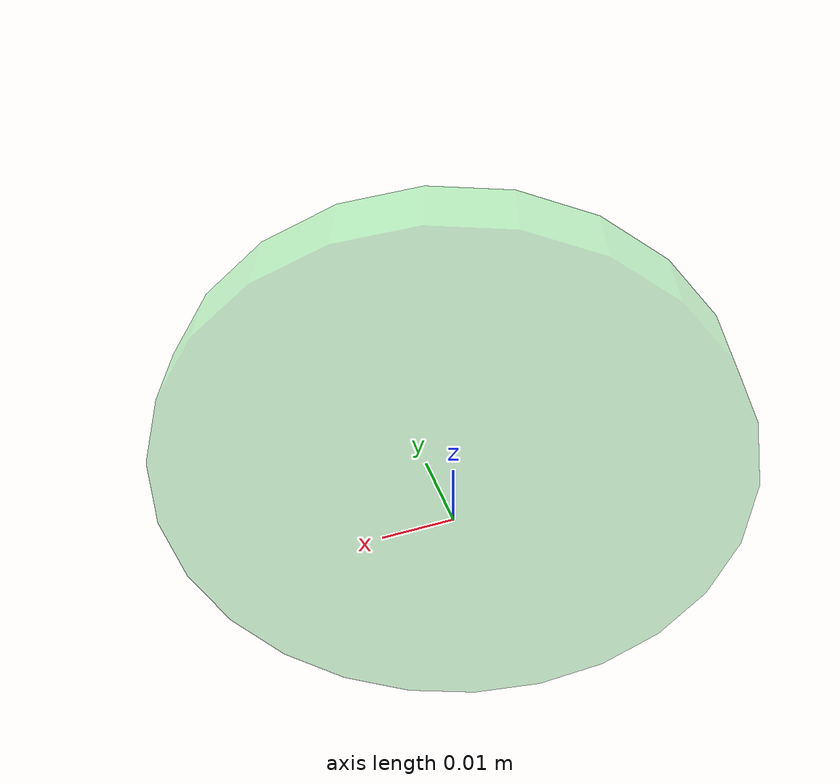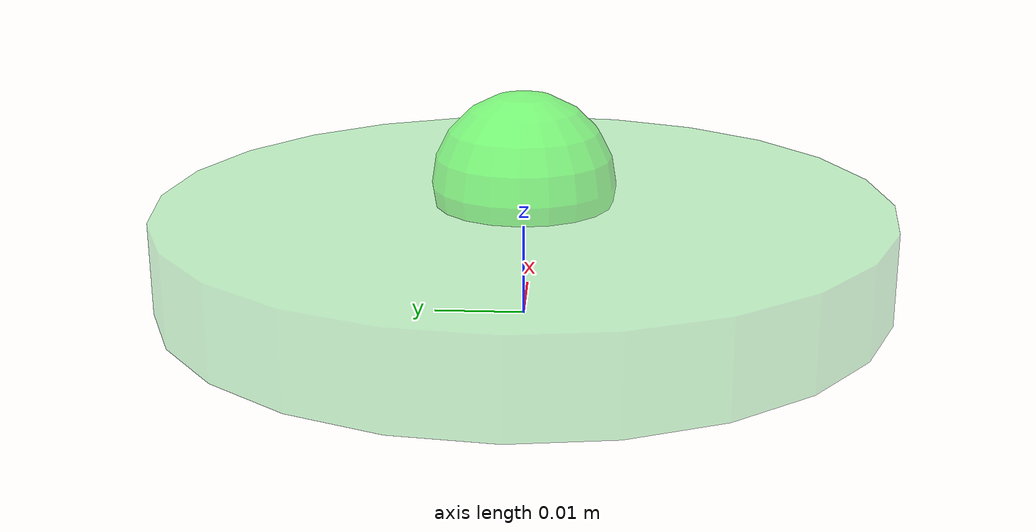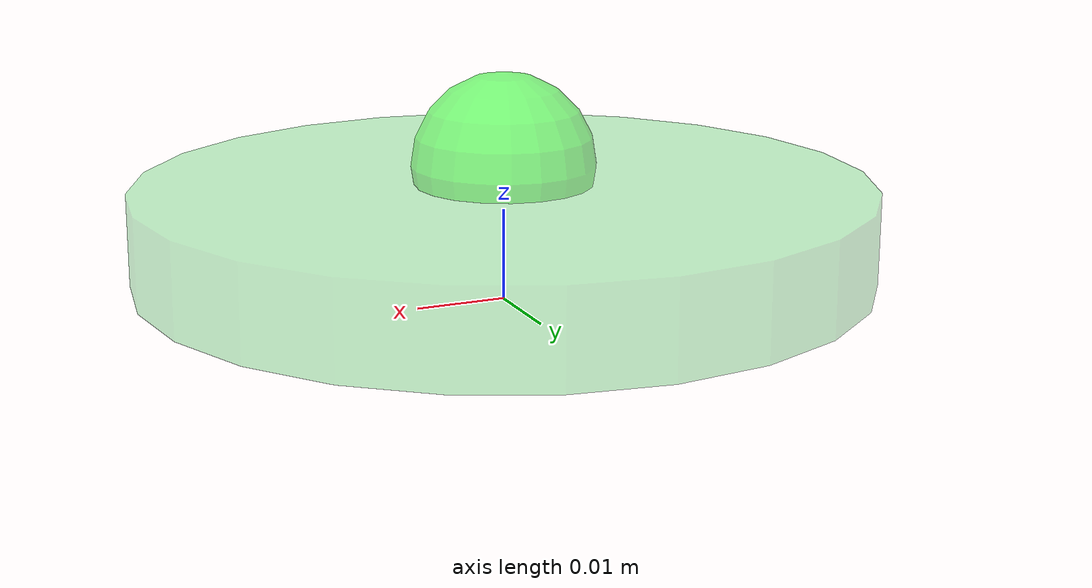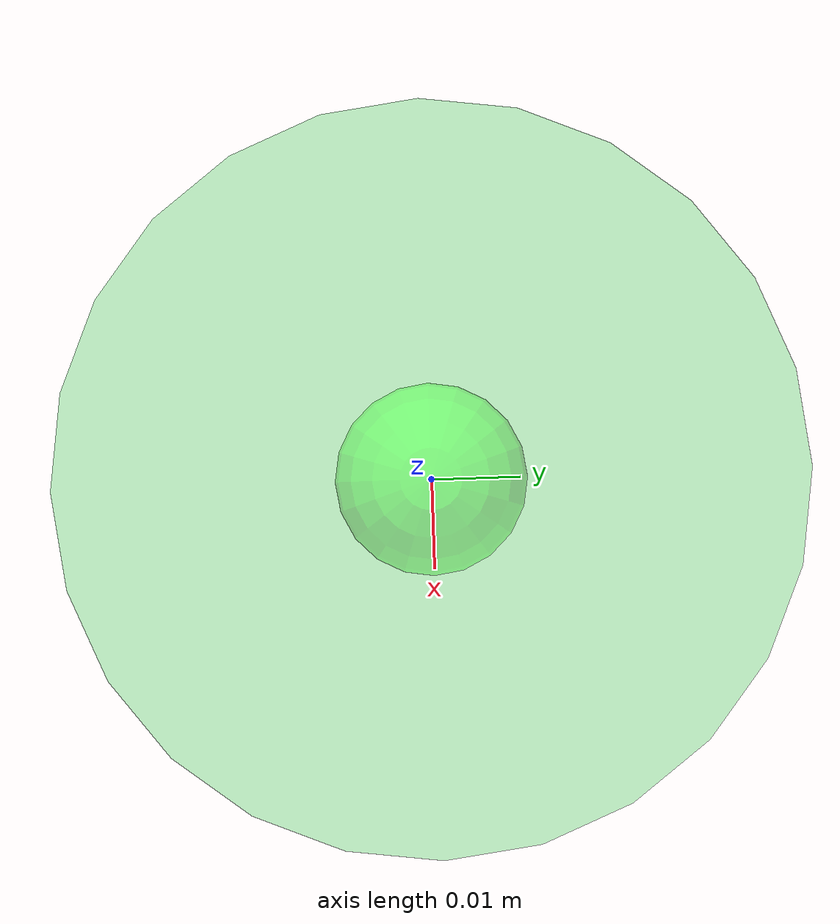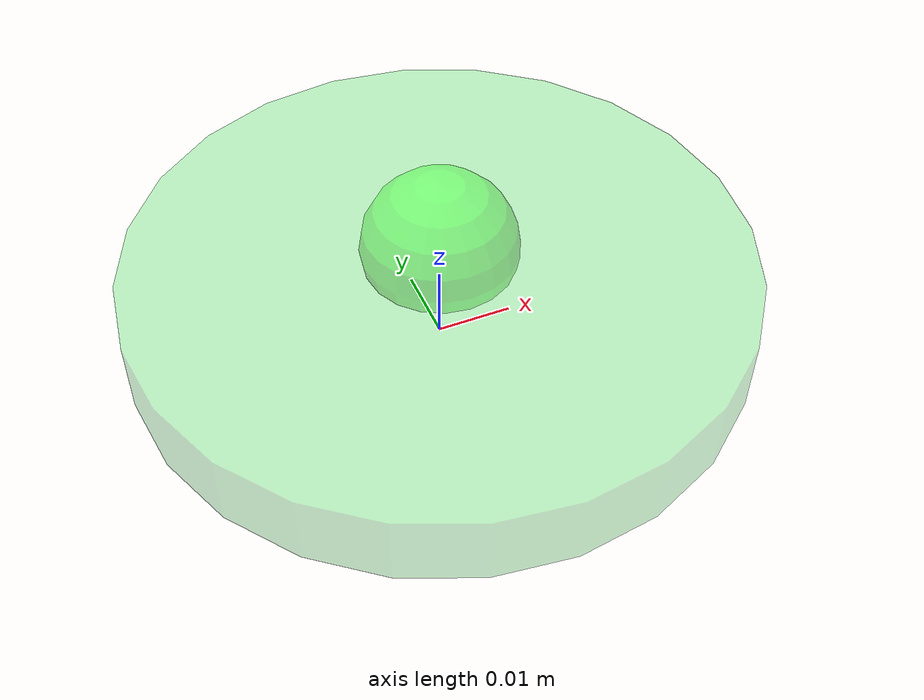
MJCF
<!--
  目标标记 MJCF — 用于 Push-T 显示目标位姿
  半透明绿色指示器
-->
<mujoco model="goal_marker">
  <compiler angle="radian"/>
  <worldbody>
    <body name="goal_marker" pos="0 0 0.015">
      <freejoint name="goal_marker_joint"/>
      <geom name="goal_base" type="cylinder" size="0.04 0.005" pos="0 0 -0.007" rgba="0.1 0.8 0.2 0.3"/>
      <site name="goal_site" pos="0 0 0" size="0.01" rgba="0 1 0 0.5"/>
    </body>
  </worldbody>
</mujoco>
